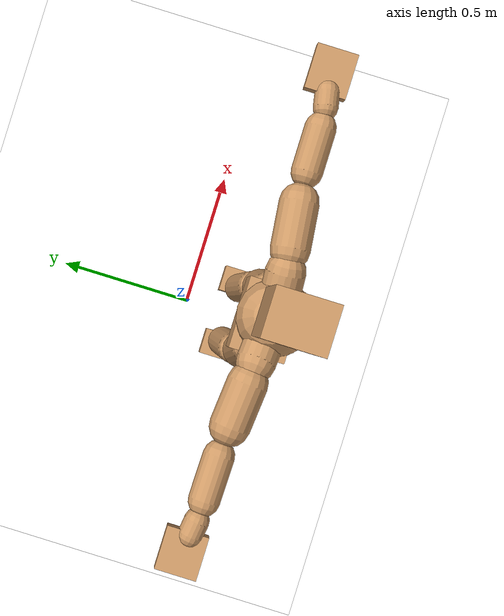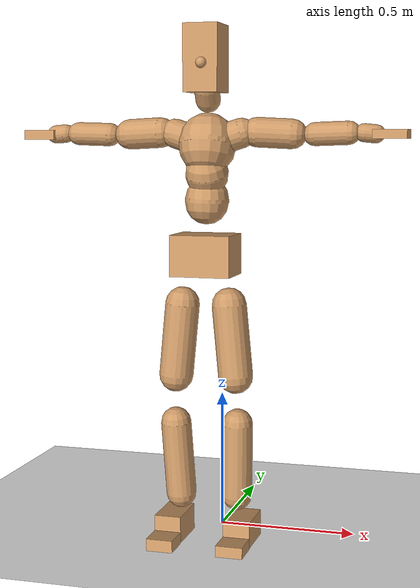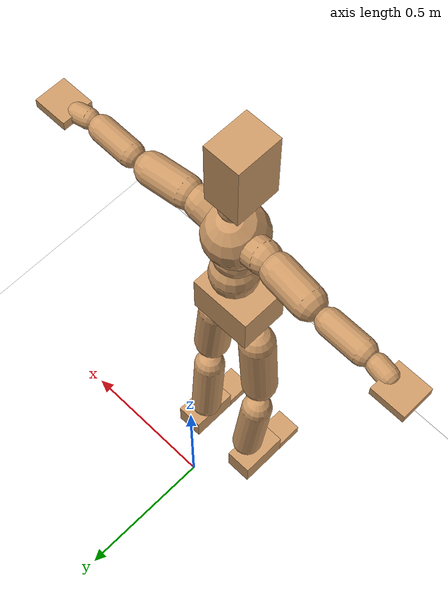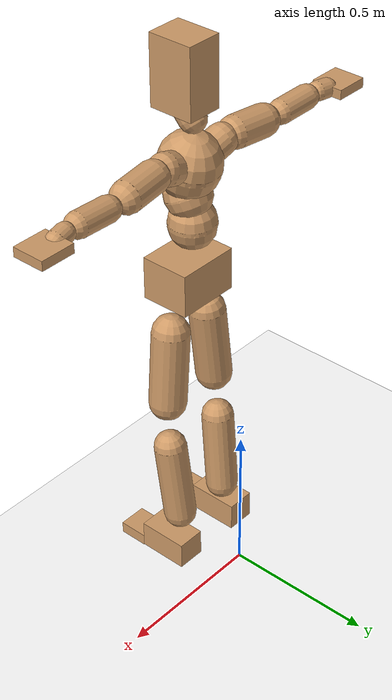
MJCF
<mujoco model="humanoid">
  <option integrator="implicitfast" />

  <visual>
    <global offwidth="1280" offheight="960" />
    <headlight active="1" ambient="0.34 0.34 0.34" diffuse="0.5 0.5 0.5" />
  </visual>

  <default>
    <joint damping="2" stiffness="2" armature="0.01" limited="true" solimplimit="0 .99 .01" />
    <geom condim="1" friction="0.7 0.005 0.0001" solimp=".99 .99 .003" solref="0.015 1" margin="0.001" rgba="0.8 0.6 .4 1" />
    <default class="smplcontact">
      <geom condim="3" friction="1. 0.005 0.0001" solref="0.015 1" solimp="0.98 0.98 0.001" priority="1" />
    </default>
    <default class="stiff_medium">
      <joint stiffness="10" />
    </default>
    <default class="stiff_medium_higher">
      <joint stiffness="50" />
    </default>
    <default class="stiff_high">
      <joint stiffness="100" />
    </default>
  </default>

  <asset>
    <texture type="skybox" builtin="gradient" rgb1="0.99 0.99 0.99" rgb2="0.608 0.828 0.892" width="100" />
    <texture builtin="flat" height="1278" mark="cross" markrgb="1 1 1" name="texgeom" random="0.01" rgb1="0.8 0.6 0.4" rgb2="0.8 0.6 0.4" type="cube" width="127" />
    <texture name="texplane" type="2d" builtin="checker" markrgb="1 1 1" rgb1="0.756 0.772 0.76" rgb2="0.6 0.6 0.6" width="100" height="100" />
    <material name="MatPlane" reflectance="0.5" texture="texplane" texrepeat="1 1" texuniform="true" />
    <material name="geom" texture="texgeom" texuniform="true" />
  </asset>

  <worldbody>
    <light name="tracking_light" pos="0 0 7" dir="0 0 -1" directional="true" cutoff="100" exponent="1" diffuse="1 1 1" specular="0.1 0.1 0.1" mode="trackcom" />
    <camera name="back" pos="0 3 2.4" xyaxes="-1 0 0 0 -1 2" mode="trackcom" />
    <camera name="side" pos="-3 0 2.4" xyaxes="0 -1 0 1 0 2" mode="trackcom" />
    <camera name="front_side" pos="-2.8 -2.8 0.8" xyaxes="0.5 -0.5 0 0.1 0.1 1" mode="trackcom" />
    <geom condim="3" name="floor" pos="0 0 0" rgba="1 1 1 1" size="100 100 .2" type="plane" material="MatPlane" />
    <body name="Pelvis" pos="-0.0018 -0.2233 1.05109" euler="90 0 0">
      <site name="Pelvis" size="0.01" />
      <freejoint name="Pelvis" />
      <geom type="box" pos="-0.0000 -0.0121 -0.0055" size="0.1069 0.0722 0.083" quat="1.0000 0.0000 0.0000 0.0000" density="3165.830099" name="Pelvis" />
      <body name="L_Hip" pos="0.0781875 -0.102825 -0.00765">
        <joint name="L_Hip_x" type="hinge" pos="0 0 0" axis="1 0 0" stiffness="12.190417346938776" range="-160.0 22.92" class="stiff_medium" damping="19.23943835853268" armature="0.013495335550763793"/>
        <joint name="L_Hip_y" type="hinge" pos="0 0 0" axis="0 1 0" stiffness="12.1624156122449" range="-70.0 70.0" class="stiff_medium" damping="12.013485255911057" armature="0.011866378571103073"/>
        <joint name="L_Hip_z" type="hinge" pos="0 0 0" axis="0 0 1" stiffness="12.164813061224491" range="-28.65 90.0" class="stiff_medium" damping="12.81394800146982" armature="0.013497721876857558"/>
        <geom type="capsule" density="2040.816327" fromto="0.0077625 -0.084375 -0.0010125 0.030825 -0.337725 -0.00405" size="0.0615" name="L_Hip" />
        <body name="L_Knee" pos="0.0385875 -0.4221 -0.0050625">
          <joint name="L_Knee_x" type="hinge" pos="0 0 0" axis="1 0 0" range="-5.16 171.89" damping="10.07682386271326" armature="0.013188848617403121" stiffness="2.4059714693877554"/>
          <joint name="L_Knee_y" type="hinge" pos="0 0 0" axis="0 1 0" range="-4.58 6.88" damping="9.486100019400176" armature="0.011596019506642586" stiffness="2.4250264693877552"/>
          <joint name="L_Knee_z" type="hinge" pos="0 0 0" axis="0 0 1" range="-6.88 4.58" damping="10.063496829521753" armature="0.013200099383969115" stiffness="2.3975664285714284"/>
          <geom type="capsule" density="1234.567901" fromto="-0.0030375 -0.08955 -0.0097875 -0.0122625 -0.3582 -0.039375" size="0.0541" name="L_Knee" />
          <body name="L_Ankle" pos="-0.0153 -0.44775 -0.0491625">
            <joint name="L_Ankle_x" type="hinge" pos="0 0 0" axis="1 0 0" range="-45.84 45.84" class="stiff_medium" damping="6.897532818423153" armature="0.011747130867095437" stiffness="11.250018673469388"/>
            <joint name="L_Ankle_y" type="hinge" pos="0 0 0" axis="0 1 0" range="-74.48 22.92" class="stiff_medium" damping="3.4392113884775433" armature="0.011682135831686723" stiffness="11.250011836734695"/>
            <joint name="L_Ankle_z" type="hinge" pos="0 0 0" axis="0 0 1" range="-4.58 4.58" class="stiff_medium" damping="6.751978545825504" armature="0.011256596119330343" stiffness="11.25"/>
            <geom type="box" pos="0.0262125 -0.0268875 0.027225" size="0.0483 0.0464 0.085" quat="1.0000 0.0000 0.0000 0.0000" density="449.071558" name="L_Ankle" class="smplcontact" />
            <body name="L_Toe" pos="0.0297 -0.062775 0.134213">
              <joint name="L_Toe_x" type="hinge" pos="0 0 0" axis="1 0 0" range="-91.67 22.92" armature="0.011009874139727855" damping="2.2258578936844855" stiffness="2.25"/>
              <joint name="L_Toe_y" type="hinge" pos="0 0 0" axis="0 1 0" range="-4.58 4.58" armature="0.010711537859158194" damping="2.1954935747164432" stiffness="2.25"/>
              <joint name="L_Toe_z" type="hinge" pos="0 0 0" axis="0 0 1" range="-4.58 4.58" armature="0.010108317957714977" damping="2.1327782540554328" stiffness="2.25"/>
              <geom type="box" pos="-0.003375 0.0061875 0.0279" size="0.0478 0.02 0.0496" quat="1.0000 0.0000 0.0000 0.0000" density="423.206892" name="L_Toe" class="smplcontact" />
            </body>
          </body>
        </body>
      </body>
      <body name="R_Hip" pos="-0.0761625 -0.101813 -0.0048375">
        <joint name="R_Hip_x" type="hinge" pos="0 0 0" axis="1 0 0" stiffness="12.190417346938776" range="-160.0 22.92" class="stiff_medium" damping="19.23943835853268" armature="0.013495335550763793"/>
        <joint name="R_Hip_y" type="hinge" pos="0 0 0" axis="0 1 0" stiffness="12.1624156122449" range="-70.0 70.0" class="stiff_medium" damping="12.013485255911057" armature="0.011866378571103073"/>
        <joint name="R_Hip_z" type="hinge" pos="0 0 0" axis="0 0 1" stiffness="12.164813061224491" range="-90.0 28.65" class="stiff_medium" damping="12.81394800146982" armature="0.013497721876857558"/>
        <geom type="capsule" density="2040.816327" fromto="-0.0086625 -0.0860625 -0.002025 -0.034425 -0.344362 -0.0079875" size="0.0606" name="R_Hip" />
        <body name="R_Knee" pos="-0.0430875 -0.430425 -0.0100125">
          <joint name="R_Knee_x" type="hinge" pos="0 0 0" axis="1 0 0" range="-5.16 171.89" damping="10.07682386271326" armature="0.013188848617403121" stiffness="2.4059714693877554"/>
          <joint name="R_Knee_y" type="hinge" pos="0 0 0" axis="0 1 0" range="-6.88 4.58" damping="9.486100019400176" armature="0.011596019506642586" stiffness="2.4250264693877552"/>
          <joint name="R_Knee_z" type="hinge" pos="0 0 0" axis="0 0 1" range="-4.58 6.88" damping="10.063496829521753" armature="0.013200099383969115" stiffness="2.3975664285714284"/>
          <geom type="capsule" density="1234.567901" fromto="0.0036 -0.0896625 -0.0095625 0.014175 -0.358537 -0.038025" size="0.0541" name="R_Knee" />
          <body name="R_Ankle" pos="0.017775 -0.4482 -0.0475875">
            <joint name="R_Ankle_x" type="hinge" pos="0 0 0" axis="1 0 0" range="-45.84 45.84" class="stiff_medium" damping="6.897532818423153" armature="0.011747130867095437" stiffness="11.250018673469388"/>
            <joint name="R_Ankle_y" type="hinge" pos="0 0 0" axis="0 1 0" range="-22.92 74.48" class="stiff_medium" damping="3.4392113884775433" armature="0.011682135831686723" stiffness="11.250011836734695"/>
            <joint name="R_Ankle_z" type="hinge" pos="0 0 0" axis="0 0 1" range="-4.58 4.58" class="stiff_medium" damping="6.751978545825504" armature="0.011256596119330343" stiffness="11.25"/>
            <geom type="box" pos="-0.02385 -0.019575 0.0288" size="0.0483 0.0478 0.0865" quat="1.0000 0.0000 0.0000 0.0000" density="434.700981" name="R_Ankle" class="smplcontact" />
            <body name="R_Toe" pos="-0.028575 -0.0541125 0.138713">
              <joint name="R_Toe_x" type="hinge" pos="0 0 0" axis="1 0 0" range="-91.67 22.92" armature="0.011009874139727855" damping="2.2258578936844855" stiffness="2.25"/>
              <joint name="R_Toe_y" type="hinge" pos="0 0 0" axis="0 1 0" range="-4.58 4.58" armature="0.010711537859158194" damping="2.1954935747164432" stiffness="2.25"/>
              <joint name="R_Toe_z" type="hinge" pos="0 0 0" axis="0 0 1" range="-4.58 4.58" armature="0.010108317957714977" damping="2.1327782540554328" stiffness="2.25"/>
              <geom type="box" pos="0.004725 0.0050625 0.0255375" size="0.0479 0.0216 0.0493" quat="1.0000 0.0000 0.0000 0.0000" density="407.384095" name="R_Toe" class="smplcontact" />
            </body>
          </body>
        </body>
      </body>
      <body name="Torso" pos="-0.0025 0.109 -0.0267">
        <joint name="Torso_x" type="hinge" pos="0 0 0" axis="1 0 0" range="-25.78 57.3" class="stiff_medium" damping="13.810652204593467" armature="0.00909250101895922" stiffness="9.323146326530612"/>
        <joint name="Torso_y" type="hinge" pos="0 0 0" axis="0 1 0" range="-57.3 57.3" class="stiff_high" damping="14.331171543099824" armature="0.005453647751768045" stiffness="94.1491306122449"/>
        <joint name="Torso_z" type="hinge" pos="0 0 0" axis="0 0 1" range="-34.38 34.38" class="stiff_high" damping="17.298336416757877" armature="0.007846444358372213" stiffness="95.34014042553191"/>
        <geom type="capsule" density="2040.816327" fromto="0.0025 0.0608 0.0005 0.003 0.0743 0.0006" size="0.0769" name="Torso" />
        <body name="Spine" pos="0.0055 0.1352 0.0011">
          <joint name="Spine_x" type="hinge" pos="0 0 0" axis="1 0 0" stiffness="9.198122653061224" range="-25.78 57.3" class="stiff_medium" damping="13.625447932409388" armature="0.008970566343267747"/>
          <joint name="Spine_y" type="hinge" pos="0 0 0" axis="0 1 0" stiffness="9.181372040816328" range="-57.3 57.3" class="stiff_high" damping="5.644321396937274" armature="0.005421705337566874"/>
          <joint name="Spine_z" type="hinge" pos="0 0 0" axis="0 0 1" stiffness="18.1392375" range="-34.38 34.38" class="stiff_high" damping="9.55999432042161" armature="0.006997835754189828"/>
          <geom type="capsule" density="2040.816327" fromto="0.0007 0.0238 0.0114 0.0008 0.0291 0.014" size="0.0755" name="Spine" />
          <body name="Chest" pos="0.0015 0.0529 0.0254">
            <joint name="Chest_x" type="hinge" pos="0 0 0" axis="1 0 0" stiffness="8.90027425531915" range="-25.78 57.3" class="stiff_medium" damping="13.35613299120066" armature="0.008907904701027891"/>
            <joint name="Chest_y" type="hinge" pos="0 0 0" axis="0 1 0" stiffness="8.011889047619047" range="-57.3 57.3" class="stiff_high" damping="5.2662250647625015" armature="0.005408588385784326"/>
            <joint name="Chest_z" type="hinge" pos="0 0 0" axis="0 0 1" stiffness="18.1318547826087" range="-34.38 34.38" class="stiff_high" damping="9.302458057933912" armature="0.006628583212401059"/>
            <geom type="capsule" density="2040.816327" fromto="-0.0009 0.0682 -0.0173 -0.001 0.0833 -0.0212" size="0.1002" name="Chest" />
            <body name="Neck" pos="-0.0028 0.2139 -0.0429">
              <joint name="Neck_x" type="hinge" pos="0 0 0" axis="1 0 0" range="-28.65 57.3" class="stiff_medium_higher" damping="9.99999999999999" armature="0.00999999999999998" stiffness="50.0"/>
              <joint name="Neck_y" type="hinge" pos="0 0 0" axis="0 1 0" range="-40.11 40.11" class="stiff_medium_higher" damping="10.0" armature="0.010000000000000002" stiffness="50.0"/>
              <joint name="Neck_z" type="hinge" pos="0 0 0" axis="0 0 1" range="-40.11 40.11" class="stiff_medium_higher" damping="9.999999999999996" armature="0.009999999999999992" stiffness="50.0"/>
              <geom type="capsule" density="1000" fromto="0.001 0.013 0.0103 0.0041 0.052 0.0411" size="0.0436" name="Neck" />
              <body name="Head" pos="0.0052 0.065 0.0513">
                <joint name="Head_x" type="hinge" pos="0 0 0" axis="1 0 0" range="-28.65 57.3" class="stiff_medium_higher" damping="1.9999999999999931" armature="0.009999999999999933" stiffness="50.0"/>
                <joint name="Head_y" type="hinge" pos="0 0 0" axis="0 1 0" range="-40.11 40.11" class="stiff_medium_higher" damping="2.0" armature="0.01" stiffness="50.0"/>
                <joint name="Head_z" type="hinge" pos="0 0 0" axis="0 0 1" range="-40.11 40.11" class="stiff_medium_higher" damping="1.9999999999999953" armature="0.009999999999999955" stiffness="50.0"/>
                <geom type="box" pos="-0.0042 0.0876 -0.0116" size="0.0606 0.1154 0.076" quat="1.0000 0.0000 0.0000 0.0000" density="1018.069894" name="Head" />
                <geom type="capsule" name="nose" size="0.02 0.01" pos="0 0.07 0.05" quat="1 0 0 0" mass="0" contype="0" conaffinity="0" />
              </body>
            </body>
            <body name="L_Thorax" pos="0.06107 0.0943175 -0.0264275">
              <joint name="L_Thorax_x" type="hinge" pos="0 0 0" axis="1 0 0" range="-10.89 4.58" class="stiff_medium_higher" damping="13.430877912506627" armature="0.006743873105350287" stiffness="33.43562346938776"/>
              <joint name="L_Thorax_y" type="hinge" pos="0 0 0" axis="0 1 0" range="-28.65 17.19" class="stiff_medium_higher" damping="11.84395870975866" armature="0.0052794554835980945" stiffness="33.21350051020408"/>
              <joint name="L_Thorax_z" type="hinge" pos="0 0 0" axis="0 0 1" range="-31.51 40.11" class="stiff_medium_higher" damping="11.842904847336026" armature="0.005278125365951001" stiffness="33.215958673469395"/>
              <geom type="capsule" density="1000" fromto="0.014105 0.0047275 -0.001395 0.05642 0.01891 -0.0055025" size="0.0521" name="L_Thorax" />
              <body name="L_Shoulder" pos="0.070525 0.0236375 -0.0068975">
                <joint name="L_Shoulder_x" type="hinge" pos="0 0 0" axis="1 0 0" range="-97.4 97.4" class="stiff_medium" damping="4.200573869623453" armature="0.0072938747131823" stiffness="6.719801632653062"/>
                <joint name="L_Shoulder_y" type="hinge" pos="0 0 0" axis="0 1 0" range="-108.86 80.21" class="stiff_medium" damping="3.571992469559294" armature="0.0053222464306009526" stiffness="6.659223469387755"/>
                <joint name="L_Shoulder_z" type="hinge" pos="0 0 0" axis="0 0 1" range="-97.4 85.94" class="stiff_medium" damping="3.572341469527375" armature="0.005320431449506389" stiffness="6.662796938775511"/>
                <geom type="capsule" density="1000" fromto="0.0402225 -0.002015 -0.0042625 0.160968 -0.007905 -0.01705" size="0.0517" name="L_Shoulder" />
                <body name="L_Elbow" pos="0.20119 -0.00992 -0.0213125">
                  <joint name="L_Elbow_x" type="hinge" pos="0 0 0" axis="1 0 0" range="-17.19 4.58" damping="3.7512094390015243" armature="0.008221713445805235" stiffness="1.3692106734693876"/>
                  <joint name="L_Elbow_y" type="hinge" pos="0 0 0" axis="0 1 0" range="-180.0 17.19" damping="3.0766314110203554" armature="0.005532912421377141" stiffness="1.368633387755102"/>
                  <joint name="L_Elbow_z" type="hinge" pos="0 0 0" axis="0 0 1" range="-100.84 4.58" damping="3.0750834512185725" armature="0.0055233832548334605" stiffness="1.3696153673469391"/>
                  <geom type="capsule" density="1000" fromto="0.038595 0.001395 -0.000155 0.154535 0.00558 -0.0006975" size="0.0405" name="L_Elbow" />
                  <body name="L_Wrist" pos="0.19313 0.006975 -0.00093">
                    <joint name="L_Wrist_x" type="hinge" pos="0 0 0" axis="1 0 0" range="-180.0 22.92" armature="0.008602907880090578" damping="1.5994571311849441" stiffness="1.486859530612245"/>
                    <joint name="L_Wrist_y" type="hinge" pos="0 0 0" axis="0 1 0" range="-17.19 17.19" armature="0.006335437662014478" damping="1.3682982903238992" stiffness="1.4775934285714285"/>
                    <joint name="L_Wrist_z" type="hinge" pos="0 0 0" axis="0 0 1" range="-22.92 22.92" armature="0.006206199430184796" damping="1.3559819581986192" stiffness="1.4813309591836734"/>
                    <geom type="capsule" density="1000" fromto="0.01302 -0.00124 -0.002325 0.05208 -0.0050375 -0.0093" size="0.0318" name="L_Wrist" class="smplcontact" />
                    <body name="L_Hand" pos="0.0651 -0.006355 -0.0115475">
                      <joint name="L_Hand_x" type="hinge" pos="0 0 0" axis="1 0 0" range="-17.19 17.19" armature="0.00982600764642057" damping="1.7452972154880602" stiffness="1.55"/>
                      <joint name="L_Hand_y" type="hinge" pos="0 0 0" axis="0 1 0" range="-51.57 51.57" armature="0.007895802531703728" damping="1.5645123153328502" stiffness="1.55"/>
                      <joint name="L_Hand_z" type="hinge" pos="0 0 0" axis="0 0 1" range="-91.67 91.67" armature="0.007381279985826152" damping="1.5126786822078597" stiffness="1.55"/>
                      <geom type="box" pos="0.0382075 0.000775 -0.004495" size="0.0585 0.0158 0.0538" quat="1.0000 0.0000 0.0000 0.0000" density="400.552564" name="L_Hand" class="smplcontact" />
                    </body>
                  </body>
                </body>
              </body>
            </body>
            <body name="R_Thorax" pos="-0.063395 0.09207 -0.029915">
              <joint name="R_Thorax_x" type="hinge" pos="0 0 0" axis="1 0 0" range="-10.89 4.58" class="stiff_medium_higher" damping="13.430877912506627" armature="0.006743873105350287" stiffness="33.43562346938776"/>
              <joint name="R_Thorax_y" type="hinge" pos="0 0 0" axis="0 1 0" range="-17.19 28.65" class="stiff_medium_higher" damping="11.84395870975866" armature="0.0052794554835980945" stiffness="33.21350051020408"/>
              <joint name="R_Thorax_z" type="hinge" pos="0 0 0" axis="0 0 1" range="-40.11 31.51" class="stiff_medium_higher" damping="11.842904847336026" armature="0.005278125365951001" stiffness="33.215958673469395"/>
              <geom type="capsule" density="1000" fromto="-0.01488 0.0050375 -0.001395 -0.05952 0.02015 -0.0056575" size="0.0511" name="R_Thorax" />
              <body name="R_Shoulder" pos="-0.0744 0.025265 -0.0070525">
                <joint name="R_Shoulder_x" type="hinge" pos="0 0 0" axis="1 0 0" range="-97.4 97.4" class="stiff_medium" damping="4.200573869623453" armature="0.0072938747131823" stiffness="6.719801632653062"/>
                <joint name="R_Shoulder_y" type="hinge" pos="0 0 0" axis="0 1 0" range="-80.21 108.86" class="stiff_medium" damping="3.571992469559294" armature="0.0053222464306009526" stiffness="6.659223469387755"/>
                <joint name="R_Shoulder_z" type="hinge" pos="0 0 0" axis="0 0 1" range="-85.94 97.4" class="stiff_medium" damping="3.572341469527375" armature="0.005320431449506389" stiffness="6.662796938775511"/>
                <geom type="capsule" density="1000" fromto="-0.0392925 -0.0020925 -0.0033325 -0.157325 -0.0082925 -0.0132525" size="0.0531" name="R_Shoulder" />
                <body name="R_Elbow" pos="-0.196618 -0.0103075 -0.016585">
                  <joint name="R_Elbow_x" type="hinge" pos="0 0 0" axis="1 0 0" range="-17.19 4.58" damping="3.7512094390015243" armature="0.008221713445805235" stiffness="1.3692106734693876"/>
                  <joint name="R_Elbow_y" type="hinge" pos="0 0 0" axis="0 1 0" range="-17.19 180.0" damping="3.0766314110203554" armature="0.005532912421377141" stiffness="1.368633387755102"/>
                  <joint name="R_Elbow_z" type="hinge" pos="0 0 0" axis="0 0 1" range="-4.58 100.84" damping="3.0750834512185725" armature="0.0055233832548334605" stiffness="1.3696153673469391"/>
                  <geom type="capsule" density="1000" fromto="-0.0396025 0.00124 -0.0008525 -0.158255 0.004805 -0.00341" size="0.0408" name="R_Elbow" />
                  <body name="R_Wrist" pos="-0.197858 0.006045 -0.00434">
                    <joint name="R_Wrist_x" type="hinge" pos="0 0 0" axis="1 0 0" range="-180.0 22.92" armature="0.008602907880090578" damping="1.5994571311849441" stiffness="1.486859530612245"/>
                    <joint name="R_Wrist_y" type="hinge" pos="0 0 0" axis="0 1 0" range="-17.19 17.19" armature="0.006335437662014478" damping="1.3682982903238992" stiffness="1.4775934285714285"/>
                    <joint name="R_Wrist_z" type="hinge" pos="0 0 0" axis="0 0 1" range="-22.92 22.92" armature="0.006206199430184796" damping="1.3559819581986192" stiffness="1.4813309591836734"/>
                    <geom type="capsule" density="1000" fromto="-0.0130975 -0.00093 -0.0016275 -0.0524675 -0.0037975 -0.0064325" size="0.0326" name="R_Wrist" class="smplcontact" />
                    <body name="R_Hand" pos="-0.065565 -0.0047275 -0.0079825">
                      <joint name="R_Hand_x" type="hinge" pos="0 0 0" axis="1 0 0" range="-17.19 17.19" armature="0.00982600764642057" damping="1.7452972154880602" stiffness="1.55"/>
                      <joint name="R_Hand_y" type="hinge" pos="0 0 0" axis="0 1 0" range="-51.57 51.57" armature="0.007895802531703728" damping="1.5645123153328502" stiffness="1.55"/>
                      <joint name="R_Hand_z" type="hinge" pos="0 0 0" axis="0 0 1" range="-91.67 91.67" armature="0.007381279985826152" damping="1.5126786822078597" stiffness="1.55"/>
                      <geom type="box" pos="-0.035805 -0.0006975 -0.0061225" size="0.0569 0.0164 0.0546" quat="1.0000 0.0000 0.0000 0.0000" density="403.679611" name="R_Hand" class="smplcontact" />
                    </body>
                  </body>
                </body>
              </body>
            </body>
          </body>
        </body>
      </body>
    </body>
  </worldbody>
  <actuator>
    <general name="L_Hip_x" joint="L_Hip_x" biastype="affine" gainprm="350.267339766903" biasprm="-262.4898695344799 -219.42751224489797 -2.565258447804357" ctrllimited="true" ctrlrange="-1 1" forcerange="-438.85502448979594 438.85502448979594" />
    <general name="L_Hip_y" joint="L_Hip_y" biastype="affine" gainprm="267.4654887613407" biasprm="0.0 -218.9234810204082 -2.402697051182211" ctrllimited="true" ctrlrange="-1 1" forcerange="-437.8469620408164 437.8469620408164" />
    <general name="L_Hip_z" joint="L_Hip_z" biastype="affine" gainprm="226.72168417679922" biasprm="117.23030193212499 -218.96663510204084 -2.562789600293964" ctrllimited="true" ctrlrange="-1 1" forcerange="-437.9332702040817 437.9332702040817" />
    <general name="L_Knee_x" joint="L_Knee_x" biastype="affine" gainprm="334.5617487428154" biasprm="315.0606064269393 -216.53743224489799 -2.519205965678315" ctrllimited="true" ctrlrange="-1 1" forcerange="-433.07486448979597 433.07486448979597" />
    <general name="L_Knee_y" joint="L_Knee_y" biastype="affine" gainprm="21.82684590193453" biasprm="4.380606071068885 -218.25238224489797 -2.371525004850044" ctrllimited="true" ctrlrange="-1 1" forcerange="-436.50476448979595 436.50476448979595" />
    <general name="L_Knee_z" joint="L_Knee_z" biastype="affine" gainprm="21.579687329883924" biasprm="-4.331001820133772 -215.78097857142856 -2.5158742073804383" ctrllimited="true" ctrlrange="-1 1" forcerange="-431.5619571428571 431.5619571428571" />
    <general name="L_Ankle_x" joint="L_Ankle_x" biastype="affine" gainprm="81.00610103169612" biasprm="0.0 -101.2501680612245 -2.299177606141051" ctrllimited="true" ctrlrange="-1 1" forcerange="-202.500336122449 202.500336122449" />
    <general name="L_Ankle_y" joint="L_Ankle_y" biastype="affine" gainprm="86.06009430266938" biasprm="-45.557068400879196 -101.25010653061226 -2.292807592318362" ctrllimited="true" ctrlrange="-1 1" forcerange="-202.5002130612245 202.5002130612245" />
    <general name="L_Ankle_z" joint="L_Ankle_z" biastype="affine" gainprm="8.093528073810704" biasprm="0.0 -101.25 -2.250659515275168" ctrllimited="true" ctrlrange="-1 1" forcerange="-202.5 202.5" />
    <general name="L_Toe_x" joint="L_Toe_x" biastype="affine" gainprm="80.99889798934223" biasprm="-48.59651136021711 -81.0 -0.8903431574737942" ctrllimited="true" ctrlrange="-1 1" forcerange="-162.0 162.0" />
    <general name="L_Toe_y" joint="L_Toe_y" biastype="affine" gainprm="6.474822459048563" biasprm="0.0 -81.0 -0.8781974298865773" ctrllimited="true" ctrlrange="-1 1" forcerange="-162.0 162.0" />
    <general name="L_Toe_z" joint="L_Toe_z" biastype="affine" gainprm="6.474822459048563" biasprm="0.0 -81.0 -0.8531113016221732" ctrllimited="true" ctrlrange="-1 1" forcerange="-162.0 162.0" />
    <general name="R_Hip_x" joint="R_Hip_x" biastype="affine" gainprm="350.267339766903" biasprm="-262.4898695344799 -219.42751224489797 -2.565258447804357" ctrllimited="true" ctrlrange="-1 1" forcerange="-438.85502448979594 438.85502448979594" />
    <general name="R_Hip_y" joint="R_Hip_y" biastype="affine" gainprm="267.4654887613407" biasprm="0.0 -218.9234810204082 -2.402697051182211" ctrllimited="true" ctrlrange="-1 1" forcerange="-437.8469620408164 437.8469620408164" />
    <general name="R_Hip_z" joint="R_Hip_z" biastype="affine" gainprm="226.72168417679922" biasprm="-117.23030193212499 -218.96663510204084 -2.562789600293964" ctrllimited="true" ctrlrange="-1 1" forcerange="-437.9332702040817 437.9332702040817" />
    <general name="R_Knee_x" joint="R_Knee_x" biastype="affine" gainprm="334.5617487428154" biasprm="315.0606064269393 -216.53743224489799 -2.519205965678315" ctrllimited="true" ctrlrange="-1 1" forcerange="-433.07486448979597 433.07486448979597" />
    <general name="R_Knee_y" joint="R_Knee_y" biastype="affine" gainprm="21.82684590193453" biasprm="-4.380606071068885 -218.25238224489797 -2.371525004850044" ctrllimited="true" ctrlrange="-1 1" forcerange="-436.50476448979595 436.50476448979595" />
    <general name="R_Knee_z" joint="R_Knee_z" biastype="affine" gainprm="21.579687329883924" biasprm="4.331001820133772 -215.78097857142856 -2.5158742073804383" ctrllimited="true" ctrlrange="-1 1" forcerange="-431.5619571428571 431.5619571428571" />
    <general name="R_Ankle_x" joint="R_Ankle_x" biastype="affine" gainprm="81.00610103169612" biasprm="0.0 -101.2501680612245 -2.299177606141051" ctrllimited="true" ctrlrange="-1 1" forcerange="-202.500336122449 202.500336122449" />
    <general name="R_Ankle_y" joint="R_Ankle_y" biastype="affine" gainprm="86.06009430266938" biasprm="45.557068400879196 -101.25010653061226 -2.292807592318362" ctrllimited="true" ctrlrange="-1 1" forcerange="-202.5002130612245 202.5002130612245" />
    <general name="R_Ankle_z" joint="R_Ankle_z" biastype="affine" gainprm="8.093528073810704" biasprm="0.0 -101.25 -2.250659515275168" ctrllimited="true" ctrlrange="-1 1" forcerange="-202.5 202.5" />
    <general name="R_Toe_x" joint="R_Toe_x" biastype="affine" gainprm="80.99889798934223" biasprm="-48.59651136021711 -81.0 -0.8903431574737942" ctrllimited="true" ctrlrange="-1 1" forcerange="-162.0 162.0" />
    <general name="R_Toe_y" joint="R_Toe_y" biastype="affine" gainprm="6.474822459048563" biasprm="0.0 -81.0 -0.8781974298865773" ctrllimited="true" ctrlrange="-1 1" forcerange="-162.0 162.0" />
    <general name="R_Toe_z" joint="R_Toe_z" biastype="affine" gainprm="6.474822459048563" biasprm="0.0 -81.0 -0.8531113016221732" ctrllimited="true" ctrlrange="-1 1" forcerange="-162.0 162.0" />
    <general name="Torso_x" joint="Torso_x" biastype="affine" gainprm="162.2249324590423" biasprm="61.54706152032995 -223.7555118367347 -3.682840587891591" ctrllimited="true" ctrlrange="-1 1" forcerange="-335.63326775510205 335.63326775510205" />
    <general name="Torso_y" joint="Torso_y" biastype="affine" gainprm="225.974557843997" biasprm="0.0 -225.95791346938776 -2.8662343086199646" ctrllimited="true" ctrlrange="-1 1" forcerange="-338.93687020408163 338.93687020408163" />
    <general name="Torso_z" joint="Torso_z" biastype="affine" gainprm="137.29991517080745" biasprm="0.0 -228.8163370212766 -3.4596672833515756" ctrllimited="true" ctrlrange="-1 1" forcerange="-343.2245055319149 343.2245055319149" />
    <general name="Spine_x" joint="Spine_x" biastype="affine" gainprm="160.04949122128795" biasprm="60.721713568789056 -220.7549436734694 -3.6334527819758367" ctrllimited="true" ctrlrange="-1 1" forcerange="-331.1324155102041 331.1324155102041" />
    <general name="Spine_y" joint="Spine_y" biastype="affine" gainprm="220.36916048323718" biasprm="0.0 -220.35292897959184 -2.822160698468637" ctrllimited="true" ctrlrange="-1 1" forcerange="-330.52939346938774 330.52939346938774" />
    <general name="Spine_z" joint="Spine_z" biastype="affine" gainprm="130.61213036278338" biasprm="0.0 -217.67085 -3.1866647734738702" ctrllimited="true" ctrlrange="-1 1" forcerange="-326.506275 326.506275" />
    <general name="Chest_x" joint="Chest_x" biastype="affine" gainprm="154.86685925194476" biasprm="58.7554574340551 -213.6065821276596 -3.561635464320176" ctrllimited="true" ctrlrange="-1 1" forcerange="-320.4098731914894 320.4098731914894" />
    <general name="Chest_y" joint="Chest_y" biastype="affine" gainprm="192.29950114859662" biasprm="0.0 -192.28533714285712 -2.6331125323812508" ctrllimited="true" ctrlrange="-1 1" forcerange="-288.4280057142857 288.4280057142857" />
    <general name="Chest_z" joint="Chest_z" biastype="affine" gainprm="130.55897088205305" biasprm="0.0 -217.58225739130438 -3.1008193526446375" ctrllimited="true" ctrlrange="-1 1" forcerange="-326.37338608695654 326.37338608695654" />
    <general name="Neck_x" joint="Neck_x" biastype="affine" gainprm="27.00198885760427" biasprm="9.000662952534757 -36.0 -0.7999999999999993" ctrllimited="true" ctrlrange="-1 1" forcerange="-72.0 72.0" />
    <general name="Neck_y" joint="Neck_y" biastype="affine" gainprm="25.20185626709732" biasprm="0.0 -36.0 -0.8" ctrllimited="true" ctrlrange="-1 1" forcerange="-72.0 72.0" />
    <general name="Neck_z" joint="Neck_z" biastype="affine" gainprm="25.20185626709732" biasprm="0.0 -36.0 -0.7999999999999997" ctrllimited="true" ctrlrange="-1 1" forcerange="-72.0 72.0" />
    <general name="Head_x" joint="Head_x" biastype="affine" gainprm="18.001325905069514" biasprm="6.000441968356505 -24.0 -0.7999999999999973" ctrllimited="true" ctrlrange="-1 1" forcerange="-48.0 48.0" />
    <general name="Head_y" joint="Head_y" biastype="affine" gainprm="16.801237511398213" biasprm="0.0 -24.0 -0.8" ctrllimited="true" ctrlrange="-1 1" forcerange="-48.0 48.0" />
    <general name="Head_z" joint="Head_z" biastype="affine" gainprm="16.801237511398213" biasprm="0.0 -24.0 -0.7999999999999982" ctrllimited="true" ctrlrange="-1 1" forcerange="-48.0 48.0" />
    <general name="L_Thorax_x" joint="L_Thorax_x" biastype="affine" gainprm="10.833239714349121" biasprm="-4.4187293211081435 -80.24549632653061 -1.0744702330005302" ctrllimited="true" ctrlrange="-1 1" forcerange="-160.49099265306123 160.49099265306123" />
    <general name="L_Thorax_y" joint="L_Thorax_y" biastype="affine" gainprm="31.887309180393395" biasprm="-7.971827295098349 -79.71240122448978 -0.9475166967806928" ctrllimited="true" ctrlrange="-1 1" forcerange="-159.42480244897956 159.42480244897956" />
    <general name="L_Thorax_z" joint="L_Thorax_z" biastype="affine" gainprm="49.8241297438119" biasprm="5.98279134036278 -79.71830081632655 -0.9474323877868822" ctrllimited="true" ctrlrange="-1 1" forcerange="-159.4366016326531 159.4366016326531" />
    <general name="L_Shoulder_x" joint="L_Shoulder_x" biastype="affine" gainprm="54.831990872567324" biasprm="0.0 -32.2550478367347 -1.1201530318995876" ctrllimited="true" ctrlrange="-1 1" forcerange="-64.5100956734694 64.5100956734694" />
    <general name="L_Shoulder_y" joint="L_Shoulder_y" biastype="affine" gainprm="52.739356038732126" biasprm="-7.9916567964757785 -31.964272653061222 -0.9525313252158117" ctrllimited="true" ctrlrange="-1 1" forcerange="-63.928545306122444 63.928545306122444" />
    <general name="L_Shoulder_z" joint="L_Shoulder_z" biastype="affine" gainprm="51.16846795221352" biasprm="-3.1983781102452724 -31.98142530612245 -0.9526243918739667" ctrllimited="true" ctrlrange="-1 1" forcerange="-63.9628506122449 63.9628506122449" />
    <general name="L_Elbow_x" joint="L_Elbow_x" biastype="affine" gainprm="9.364370274135227" biasprm="-5.424194265358073 -49.291584244897955 -0.6001935102402439" ctrllimited="true" ctrlrange="-1 1" forcerange="-98.58316848979591 98.58316848979591" />
    <general name="L_Elbow_y" joint="L_Elbow_y" biastype="affine" gainprm="84.78555943298619" biasprm="-70.00323003846282 -49.27080195918367 -0.49226102576325687" ctrllimited="true" ctrlrange="-1 1" forcerange="-98.54160391836734 98.54160391836734" />
    <general name="L_Elbow_z" joint="L_Elbow_z" biastype="affine" gainprm="45.359839041363344" biasprm="-41.41849844547179 -49.306153224489805 -0.49201335219497166" ctrllimited="true" ctrlrange="-1 1" forcerange="-98.61230644897961 98.61230644897961" />
    <general name="L_Wrist_x" joint="L_Wrist_x" biastype="affine" gainprm="15.797683800581504" biasprm="-12.228958069166877 -8.92115718367347 -0.6397828524739777" ctrllimited="true" ctrlrange="-1 1" forcerange="-17.84231436734694 17.84231436734694" />
    <general name="L_Wrist_y" joint="L_Wrist_y" biastype="affine" gainprm="2.659864086290334" biasprm="0.0 -8.86556057142857 -0.5473193161295596" ctrllimited="true" ctrlrange="-1 1" forcerange="-17.73112114285714 17.73112114285714" />
    <general name="L_Wrist_z" joint="L_Wrist_z" biastype="affine" gainprm="3.5554561826046047" biasprm="0.0 -8.88798575510204 -0.5423927832794477" ctrllimited="true" ctrlrange="-1 1" forcerange="-17.77597151020408 17.77597151020408" />
    <general name="L_Hand_x" joint="L_Hand_x" biastype="affine" gainprm="2.7902055152857757" biasprm="0.0 -9.3 -0.6981188861952241" ctrllimited="true" ctrlrange="-1 1" forcerange="-18.6 18.6" />
    <general name="L_Hand_y" joint="L_Hand_y" biastype="affine" gainprm="8.370616545857324" biasprm="0.0 -9.3 -0.6258049261331401" ctrllimited="true" ctrlrange="-1 1" forcerange="-18.6 18.6" />
    <general name="L_Hand_z" joint="L_Hand_z" biastype="affine" gainprm="14.879472925319778" biasprm="0.0 -9.3 -0.6050714728831439" ctrllimited="true" ctrlrange="-1 1" forcerange="-18.6 18.6" />
    <general name="R_Thorax_x" joint="R_Thorax_x" biastype="affine" gainprm="10.833239714349121" biasprm="-4.4187293211081435 -80.24549632653061 -1.0744702330005302" ctrllimited="true" ctrlrange="-1 1" forcerange="-160.49099265306123 160.49099265306123" />
    <general name="R_Thorax_y" joint="R_Thorax_y" biastype="affine" gainprm="31.887309180393395" biasprm="7.971827295098343 -79.71240122448978 -0.9475166967806928" ctrllimited="true" ctrlrange="-1 1" forcerange="-159.42480244897956 159.42480244897956" />
    <general name="R_Thorax_z" joint="R_Thorax_z" biastype="affine" gainprm="49.8241297438119" biasprm="-5.98279134036278 -79.71830081632655 -0.9474323877868822" ctrllimited="true" ctrlrange="-1 1" forcerange="-159.4366016326531 159.4366016326531" />
    <general name="R_Shoulder_x" joint="R_Shoulder_x" biastype="affine" gainprm="54.831990872567324" biasprm="0.0 -32.2550478367347 -1.1201530318995876" ctrllimited="true" ctrlrange="-1 1" forcerange="-64.5100956734694 64.5100956734694" />
    <general name="R_Shoulder_y" joint="R_Shoulder_y" biastype="affine" gainprm="52.739356038732126" biasprm="7.9916567964757785 -31.964272653061222 -0.9525313252158117" ctrllimited="true" ctrlrange="-1 1" forcerange="-63.928545306122444 63.928545306122444" />
    <general name="R_Shoulder_z" joint="R_Shoulder_z" biastype="affine" gainprm="51.16846795221352" biasprm="3.1983781102452653 -31.98142530612245 -0.9526243918739667" ctrllimited="true" ctrlrange="-1 1" forcerange="-63.9628506122449 63.9628506122449" />
    <general name="R_Elbow_x" joint="R_Elbow_x" biastype="affine" gainprm="9.364370274135227" biasprm="-5.424194265358073 -49.291584244897955 -0.6001935102402439" ctrllimited="true" ctrlrange="-1 1" forcerange="-98.58316848979591 98.58316848979591" />
    <general name="R_Elbow_y" joint="R_Elbow_y" biastype="affine" gainprm="84.78555943298619" biasprm="70.00323003846282 -49.27080195918367 -0.49226102576325687" ctrllimited="true" ctrlrange="-1 1" forcerange="-98.54160391836734 98.54160391836734" />
    <general name="R_Elbow_z" joint="R_Elbow_z" biastype="affine" gainprm="45.359839041363344" biasprm="41.41849844547178 -49.306153224489805 -0.49201335219497166" ctrllimited="true" ctrlrange="-1 1" forcerange="-98.61230644897961 98.61230644897961" />
    <general name="R_Wrist_x" joint="R_Wrist_x" biastype="affine" gainprm="15.797683800581504" biasprm="-12.228958069166877 -8.92115718367347 -0.6397828524739777" ctrllimited="true" ctrlrange="-1 1" forcerange="-17.84231436734694 17.84231436734694" />
    <general name="R_Wrist_y" joint="R_Wrist_y" biastype="affine" gainprm="2.659864086290334" biasprm="0.0 -8.86556057142857 -0.5473193161295596" ctrllimited="true" ctrlrange="-1 1" forcerange="-17.73112114285714 17.73112114285714" />
    <general name="R_Wrist_z" joint="R_Wrist_z" biastype="affine" gainprm="3.5554561826046047" biasprm="0.0 -8.88798575510204 -0.5423927832794477" ctrllimited="true" ctrlrange="-1 1" forcerange="-17.77597151020408 17.77597151020408" />
    <general name="R_Hand_x" joint="R_Hand_x" biastype="affine" gainprm="2.7902055152857757" biasprm="0.0 -9.3 -0.6981188861952241" ctrllimited="true" ctrlrange="-1 1" forcerange="-18.6 18.6" />
    <general name="R_Hand_y" joint="R_Hand_y" biastype="affine" gainprm="8.370616545857324" biasprm="0.0 -9.3 -0.6258049261331401" ctrllimited="true" ctrlrange="-1 1" forcerange="-18.6 18.6" />
    <general name="R_Hand_z" joint="R_Hand_z" biastype="affine" gainprm="14.879472925319778" biasprm="0.0 -9.3 -0.6050714728831439" ctrllimited="true" ctrlrange="-1 1" forcerange="-18.6 18.6" />
  </actuator>
  <contact>
    <exclude body1="Torso" body2="Chest" />
    <exclude body1="Head" body2="Chest" />
    <exclude body1="R_Knee" body2="R_Toe" />
    <exclude body1="R_Knee" body2="L_Ankle" />
    <exclude body1="R_Knee" body2="L_Toe" />
    <exclude body1="L_Knee" body2="L_Toe" />
    <exclude body1="L_Knee" body2="R_Ankle" />
    <exclude body1="L_Knee" body2="R_Toe" />
    <exclude body1="L_Shoulder" body2="Chest" />
    <exclude body1="R_Shoulder" body2="Chest" />
  </contact>
  <sensor>
    <framelinvel name="sensor_Pelvis_framelinvel" objtype="xbody" objname="Pelvis" />
    <framelinvel name="sensor_L_Hip_framelinvel" objtype="xbody" objname="L_Hip" />
    <framelinvel name="sensor_L_Knee_framelinvel" objtype="xbody" objname="L_Knee" />
    <framelinvel name="sensor_L_Ankle_framelinvel" objtype="xbody" objname="L_Ankle" />
    <framelinvel name="sensor_L_Toe_framelinvel" objtype="xbody" objname="L_Toe" />
    <framelinvel name="sensor_R_Hip_framelinvel" objtype="xbody" objname="R_Hip" />
    <framelinvel name="sensor_R_Knee_framelinvel" objtype="xbody" objname="R_Knee" />
    <framelinvel name="sensor_R_Ankle_framelinvel" objtype="xbody" objname="R_Ankle" />
    <framelinvel name="sensor_R_Toe_framelinvel" objtype="xbody" objname="R_Toe" />
    <framelinvel name="sensor_Torso_framelinvel" objtype="xbody" objname="Torso" />
    <framelinvel name="sensor_Spine_framelinvel" objtype="xbody" objname="Spine" />
    <framelinvel name="sensor_Chest_framelinvel" objtype="xbody" objname="Chest" />
    <framelinvel name="sensor_Neck_framelinvel" objtype="xbody" objname="Neck" />
    <framelinvel name="sensor_Head_framelinvel" objtype="xbody" objname="Head" />
    <framelinvel name="sensor_L_Thorax_framelinvel" objtype="xbody" objname="L_Thorax" />
    <framelinvel name="sensor_L_Shoulder_framelinvel" objtype="xbody" objname="L_Shoulder" />
    <framelinvel name="sensor_L_Elbow_framelinvel" objtype="xbody" objname="L_Elbow" />
    <framelinvel name="sensor_L_Wrist_framelinvel" objtype="xbody" objname="L_Wrist" />
    <framelinvel name="sensor_L_Hand_framelinvel" objtype="xbody" objname="L_Hand" />
    <framelinvel name="sensor_R_Thorax_framelinvel" objtype="xbody" objname="R_Thorax" />
    <framelinvel name="sensor_R_Shoulder_framelinvel" objtype="xbody" objname="R_Shoulder" />
    <framelinvel name="sensor_R_Elbow_framelinvel" objtype="xbody" objname="R_Elbow" />
    <framelinvel name="sensor_R_Wrist_framelinvel" objtype="xbody" objname="R_Wrist" />
    <framelinvel name="sensor_R_Hand_framelinvel" objtype="xbody" objname="R_Hand" />
    <frameangvel name="sensor_Pelvis_frameangvel" objtype="xbody" objname="Pelvis" />
    <frameangvel name="sensor_L_Hip_frameangvel" objtype="xbody" objname="L_Hip" />
    <frameangvel name="sensor_L_Knee_frameangvel" objtype="xbody" objname="L_Knee" />
    <frameangvel name="sensor_L_Ankle_frameangvel" objtype="xbody" objname="L_Ankle" />
    <frameangvel name="sensor_L_Toe_frameangvel" objtype="xbody" objname="L_Toe" />
    <frameangvel name="sensor_R_Hip_frameangvel" objtype="xbody" objname="R_Hip" />
    <frameangvel name="sensor_R_Knee_frameangvel" objtype="xbody" objname="R_Knee" />
    <frameangvel name="sensor_R_Ankle_frameangvel" objtype="xbody" objname="R_Ankle" />
    <frameangvel name="sensor_R_Toe_frameangvel" objtype="xbody" objname="R_Toe" />
    <frameangvel name="sensor_Torso_frameangvel" objtype="xbody" objname="Torso" />
    <frameangvel name="sensor_Spine_frameangvel" objtype="xbody" objname="Spine" />
    <frameangvel name="sensor_Chest_frameangvel" objtype="xbody" objname="Chest" />
    <frameangvel name="sensor_Neck_frameangvel" objtype="xbody" objname="Neck" />
    <frameangvel name="sensor_Head_frameangvel" objtype="xbody" objname="Head" />
    <frameangvel name="sensor_L_Thorax_frameangvel" objtype="xbody" objname="L_Thorax" />
    <frameangvel name="sensor_L_Shoulder_frameangvel" objtype="xbody" objname="L_Shoulder" />
    <frameangvel name="sensor_L_Elbow_frameangvel" objtype="xbody" objname="L_Elbow" />
    <frameangvel name="sensor_L_Wrist_frameangvel" objtype="xbody" objname="L_Wrist" />
    <frameangvel name="sensor_L_Hand_frameangvel" objtype="xbody" objname="L_Hand" />
    <frameangvel name="sensor_R_Thorax_frameangvel" objtype="xbody" objname="R_Thorax" />
    <frameangvel name="sensor_R_Shoulder_frameangvel" objtype="xbody" objname="R_Shoulder" />
    <frameangvel name="sensor_R_Elbow_frameangvel" objtype="xbody" objname="R_Elbow" />
    <frameangvel name="sensor_R_Wrist_frameangvel" objtype="xbody" objname="R_Wrist" />
    <frameangvel name="sensor_R_Hand_frameangvel" objtype="xbody" objname="R_Hand" />
    <subtreelinvel name="Chest_subtreelinvel" body="Chest" />
    <gyro name="Pelvis_gyro" site="Pelvis" />
  </sensor>
</mujoco>
